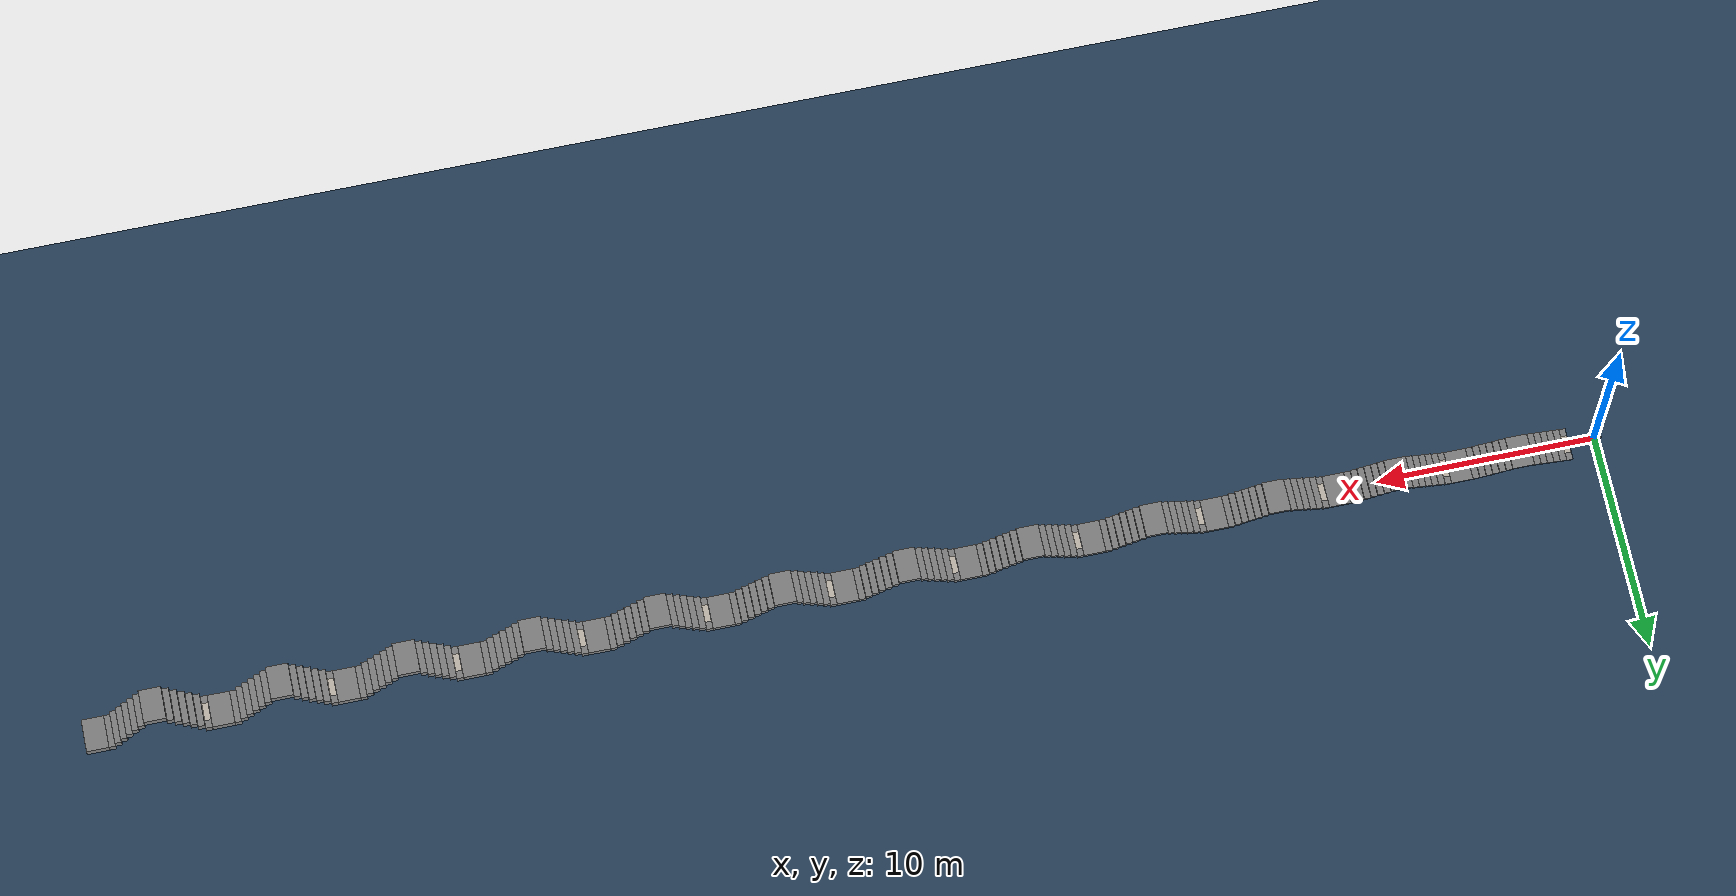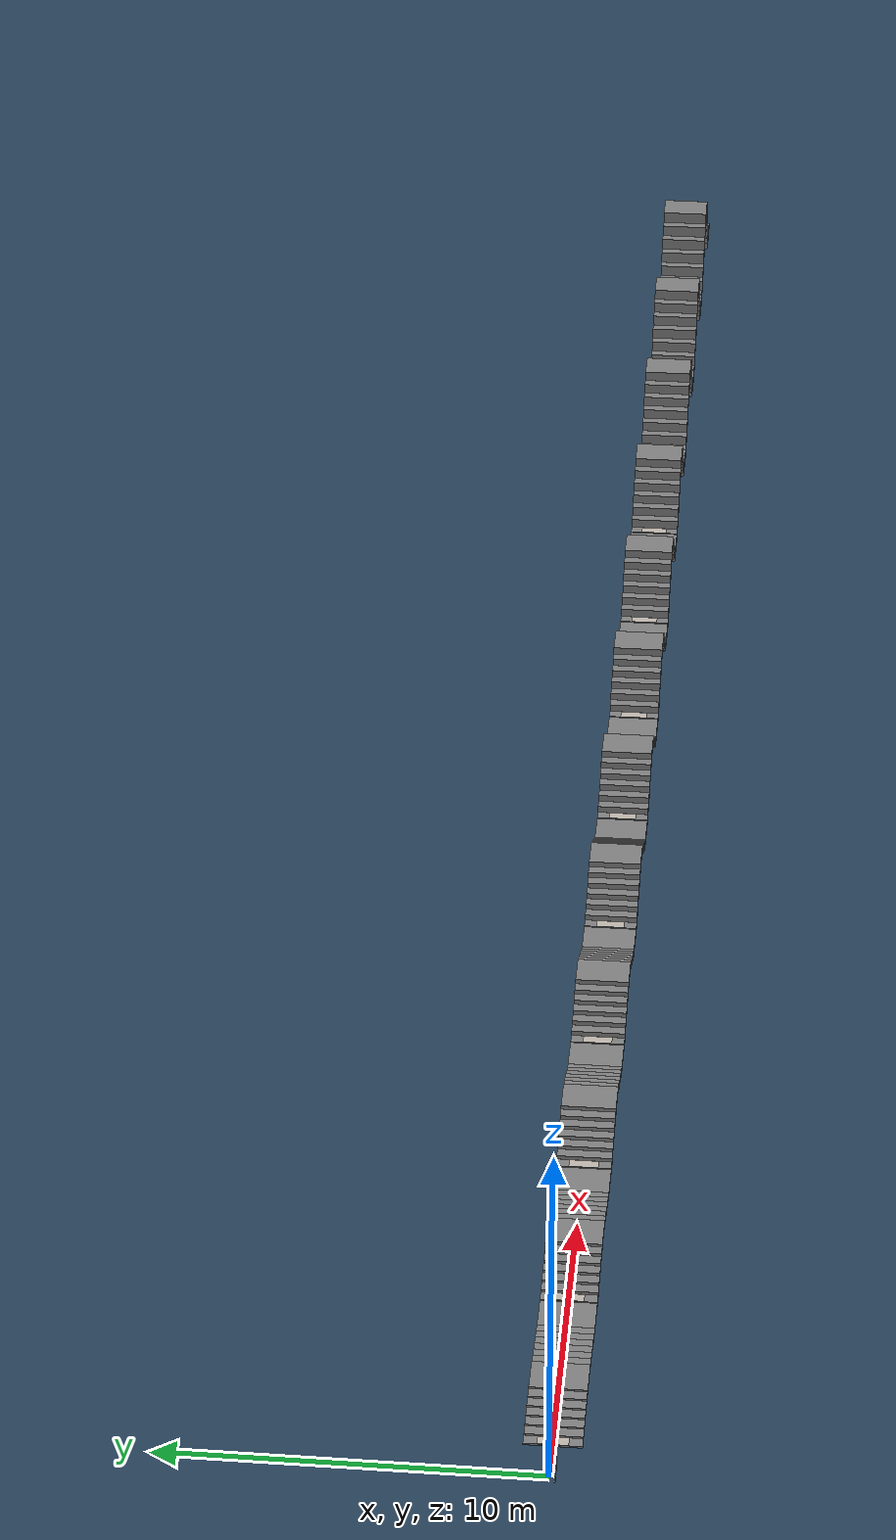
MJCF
<mujoco model="go2 scene">
  <include file="dog.xml" />
  <!--Stairs series: Up 6, Down 6, Start height 0.050, Step inc 0.030, Max height 0.400. -->
  <statistic center="0 0 0.1" extent="0.8" />
  <visual>
    <headlight diffuse="0.6 0.6 0.6" ambient="0.3 0.3 0.3" specular="0 0 0" />
    <rgba haze="0.15 0.25 0.35 1" />
    <global azimuth="-130" elevation="-20" />
  </visual>
  <asset>
    <texture type="skybox" builtin="gradient" rgb1="0.3 0.5 0.7" rgb2="0 0 0" width="512" height="3072" />
    <texture type="2d" name="groundplane" builtin="checker" mark="edge" rgb1="0.2 0.3 0.4" rgb2="0.1 0.2 0.3" markrgb="0.8 0.8 0.8" width="300" height="300" />
    <material name="groundplane" texture="groundplane" texuniform="true" texrepeat="5 5" reflectance="0.0" />
    <texture name="tex_height_5cm" type="2d" file="./imgs/height_5cm.png" />
    <material name="mat_height_5cm" texture="tex_height_5cm" specular="0" shininess="0" emission="1" texrepeat="1 1" rgba="1 1 1 1" />
    <texture name="tex_height_8cm" type="2d" file="./imgs/height_8cm.png" />
    <material name="mat_height_8cm" texture="tex_height_8cm" specular="0" shininess="0" emission="1" texrepeat="1 1" rgba="1 1 1 1" />
    <texture name="tex_height_11cm" type="2d" file="./imgs/height_11cm.png" />
    <material name="mat_height_11cm" texture="tex_height_11cm" specular="0" shininess="0" emission="1" texrepeat="1 1" rgba="1 1 1 1" />
    <texture name="tex_height_14cm" type="2d" file="./imgs/height_14cm.png" />
    <material name="mat_height_14cm" texture="tex_height_14cm" specular="0" shininess="0" emission="1" texrepeat="1 1" rgba="1 1 1 1" />
    <texture name="tex_height_17cm" type="2d" file="./imgs/height_17cm.png" />
    <material name="mat_height_17cm" texture="tex_height_17cm" specular="0" shininess="0" emission="1" texrepeat="1 1" rgba="1 1 1 1" />
    <texture name="tex_height_20cm" type="2d" file="./imgs/height_20cm.png" />
    <material name="mat_height_20cm" texture="tex_height_20cm" specular="0" shininess="0" emission="1" texrepeat="1 1" rgba="1 1 1 1" />
    <texture name="tex_height_23cm" type="2d" file="./imgs/height_23cm.png" />
    <material name="mat_height_23cm" texture="tex_height_23cm" specular="0" shininess="0" emission="1" texrepeat="1 1" rgba="1 1 1 1" />
    <texture name="tex_height_26cm" type="2d" file="./imgs/height_26cm.png" />
    <material name="mat_height_26cm" texture="tex_height_26cm" specular="0" shininess="0" emission="1" texrepeat="1 1" rgba="1 1 1 1" />
    <texture name="tex_height_29cm" type="2d" file="./imgs/height_29cm.png" />
    <material name="mat_height_29cm" texture="tex_height_29cm" specular="0" shininess="0" emission="1" texrepeat="1 1" rgba="1 1 1 1" />
    <texture name="tex_height_32cm" type="2d" file="./imgs/height_32cm.png" />
    <material name="mat_height_32cm" texture="tex_height_32cm" specular="0" shininess="0" emission="1" texrepeat="1 1" rgba="1 1 1 1" />
    <texture name="tex_height_35cm" type="2d" file="./imgs/height_35cm.png" />
    <material name="mat_height_35cm" texture="tex_height_35cm" specular="0" shininess="0" emission="1" texrepeat="1 1" rgba="1 1 1 1" />
    <texture name="tex_height_38cm" type="2d" file="./imgs/height_38cm.png" />
    <material name="mat_height_38cm" texture="tex_height_38cm" specular="0" shininess="0" emission="1" texrepeat="1 1" rgba="1 1 1 1" />
  </asset>
  <worldbody>
    <light pos="0 0 1.5" dir="0 0 -1" directional="true" />
    <geom name="floor" size="0 0 0.05" type="plane" material="groundplane" />
    <geom pos="1.3 0.0 0.025" type="box" size="0.15 0.75 0.025" quat="1.0 0.0 0.0 0.0" />
    <geom pos="1.3 0.0 0.052" type="box" size="0.4 0.14 0.0001" quat="0.7071067811865476 0.0 0.0 0.7071067811865475" contype="0" conaffinity="0" group="1" material="mat_height_5cm" />
    <geom pos="1.6 0.0 0.07500000000000001" type="box" size="0.15 0.75 0.025" quat="1.0 0.0 0.0 0.0" />
    <geom pos="1.9 0.0 0.125" type="box" size="0.15 0.75 0.025" quat="1.0 0.0 0.0 0.0" />
    <geom pos="2.2 0.0 0.17500000000000002" type="box" size="0.15 0.75 0.025" quat="1.0 0.0 0.0 0.0" />
    <geom pos="2.5 0.0 0.225" type="box" size="0.15 0.75 0.025" quat="1.0 0.0 0.0 0.0" />
    <geom pos="2.8 0.0 0.275" type="box" size="0.15 0.75 0.025" quat="1.0 0.0 0.0 0.0" />
    <geom pos="3.4499999999999997 0.0 0.32500000000000007" type="box" size="0.5 0.75 0.025" quat="1.0 0.0 0.0 0.0" />
    <geom pos="4.1 0.0 0.275" type="box" size="0.15 0.75 0.025" quat="1.0 0.0 0.0 0.0" />
    <geom pos="4.3999999999999995 0.0 0.22500000000000003" type="box" size="0.15 0.75 0.025" quat="1.0 0.0 0.0 0.0" />
    <geom pos="4.699999999999999 0.0 0.17500000000000002" type="box" size="0.15 0.75 0.025" quat="1.0 0.0 0.0 0.0" />
    <geom pos="5.0 0.0 0.125" type="box" size="0.15 0.75 0.025" quat="1.0 0.0 0.0 0.0" />
    <geom pos="5.3 0.0 0.07500000000000001" type="box" size="0.15 0.75 0.025" quat="1.0 0.0 0.0 0.0" />
    <geom pos="5.6 0.0 0.025000000000000022" type="box" size="0.15 0.75 0.025" quat="1.0 0.0 0.0 0.0" />
    <geom pos="6.25 0.0 0.025" type="box" size="0.5 0.75 0.025" quat="1.0 0.0 0.0 0.0" />
    <geom pos="6.898999999999999 0.0 0.04" type="box" size="0.15 0.75 0.04" quat="1.0 0.0 0.0 0.0" />
    <geom pos="6.898999999999999 0.0 0.082" type="box" size="0.4 0.14 0.0001" quat="0.7071067811865476 0.0 0.0 0.7071067811865475" contype="0" conaffinity="0" group="1" material="mat_height_8cm" />
    <geom pos="7.198999999999999 0.0 0.12" type="box" size="0.15 0.75 0.04" quat="1.0 0.0 0.0 0.0" />
    <geom pos="7.498999999999999 0.0 0.2" type="box" size="0.15 0.75 0.04" quat="1.0 0.0 0.0 0.0" />
    <geom pos="7.7989999999999995 0.0 0.28" type="box" size="0.15 0.75 0.04" quat="1.0 0.0 0.0 0.0" />
    <geom pos="8.099 0.0 0.36" type="box" size="0.15 0.75 0.04" quat="1.0 0.0 0.0 0.0" />
    <geom pos="8.399 0.0 0.44" type="box" size="0.15 0.75 0.04" quat="1.0 0.0 0.0 0.0" />
    <geom pos="9.049 0.0 0.52" type="box" size="0.5 0.75 0.04" quat="1.0 0.0 0.0 0.0" />
    <geom pos="9.698999999999998 0.0 0.44" type="box" size="0.15 0.75 0.04" quat="1.0 0.0 0.0 0.0" />
    <geom pos="9.998999999999999 0.0 0.36" type="box" size="0.15 0.75 0.04" quat="1.0 0.0 0.0 0.0" />
    <geom pos="10.299 0.0 0.28" type="box" size="0.15 0.75 0.04" quat="1.0 0.0 0.0 0.0" />
    <geom pos="10.598999999999998 0.0 0.2" type="box" size="0.15 0.75 0.04" quat="1.0 0.0 0.0 0.0" />
    <geom pos="10.899 0.0 0.12" type="box" size="0.15 0.75 0.04" quat="1.0 0.0 0.0 0.0" />
    <geom pos="11.198999999999998 0.0 0.03999999999999998" type="box" size="0.15 0.75 0.04" quat="1.0 0.0 0.0 0.0" />
    <geom pos="11.849 0.0 0.04" type="box" size="0.5 0.75 0.04" quat="1.0 0.0 0.0 0.0" />
    <geom pos="12.498 0.0 0.055" type="box" size="0.15 0.75 0.055" quat="1.0 0.0 0.0 0.0" />
    <geom pos="12.498 0.0 0.112" type="box" size="0.4 0.14 0.0001" quat="0.7071067811865476 0.0 0.0 0.7071067811865475" contype="0" conaffinity="0" group="1" material="mat_height_11cm" />
    <geom pos="12.797999999999998 0.0 0.165" type="box" size="0.15 0.75 0.055" quat="1.0 0.0 0.0 0.0" />
    <geom pos="13.097999999999999 0.0 0.275" type="box" size="0.15 0.75 0.055" quat="1.0 0.0 0.0 0.0" />
    <geom pos="13.397999999999998 0.0 0.385" type="box" size="0.15 0.75 0.055" quat="1.0 0.0 0.0 0.0" />
    <geom pos="13.697999999999999 0.0 0.495" type="box" size="0.15 0.75 0.055" quat="1.0 0.0 0.0 0.0" />
    <geom pos="13.997999999999998 0.0 0.605" type="box" size="0.15 0.75 0.055" quat="1.0 0.0 0.0 0.0" />
    <geom pos="14.647999999999998 0.0 0.7150000000000001" type="box" size="0.5 0.75 0.055" quat="1.0 0.0 0.0 0.0" />
    <geom pos="15.297999999999998 0.0 0.605" type="box" size="0.15 0.75 0.055" quat="1.0 0.0 0.0 0.0" />
    <geom pos="15.597999999999999 0.0 0.495" type="box" size="0.15 0.75 0.055" quat="1.0 0.0 0.0 0.0" />
    <geom pos="15.897999999999998 0.0 0.385" type="box" size="0.15 0.75 0.055" quat="1.0 0.0 0.0 0.0" />
    <geom pos="16.197999999999997 0.0 0.27499999999999997" type="box" size="0.15 0.75 0.055" quat="1.0 0.0 0.0 0.0" />
    <geom pos="16.497999999999998 0.0 0.16499999999999998" type="box" size="0.15 0.75 0.055" quat="1.0 0.0 0.0 0.0" />
    <geom pos="16.798 0.0 0.05499999999999994" type="box" size="0.15 0.75 0.055" quat="1.0 0.0 0.0 0.0" />
    <geom pos="17.448 0.0 0.055" type="box" size="0.5 0.75 0.055" quat="1.0 0.0 0.0 0.0" />
    <geom pos="18.096999999999998 0.0 0.07" type="box" size="0.15 0.75 0.07" quat="1.0 0.0 0.0 0.0" />
    <geom pos="18.096999999999998 0.0 0.142" type="box" size="0.4 0.14 0.0001" quat="0.7071067811865476 0.0 0.0 0.7071067811865475" contype="0" conaffinity="0" group="1" material="mat_height_14cm" />
    <geom pos="18.397 0.0 0.21000000000000002" type="box" size="0.15 0.75 0.07" quat="1.0 0.0 0.0 0.0" />
    <geom pos="18.696999999999996 0.0 0.35000000000000003" type="box" size="0.15 0.75 0.07" quat="1.0 0.0 0.0 0.0" />
    <geom pos="18.996999999999996 0.0 0.49000000000000005" type="box" size="0.15 0.75 0.07" quat="1.0 0.0 0.0 0.0" />
    <geom pos="19.296999999999997 0.0 0.6300000000000001" type="box" size="0.15 0.75 0.07" quat="1.0 0.0 0.0 0.0" />
    <geom pos="19.596999999999998 0.0 0.77" type="box" size="0.15 0.75 0.07" quat="1.0 0.0 0.0 0.0" />
    <geom pos="20.246999999999996 0.0 0.9100000000000001" type="box" size="0.5 0.75 0.07" quat="1.0 0.0 0.0 0.0" />
    <geom pos="20.897 0.0 0.77" type="box" size="0.15 0.75 0.07" quat="1.0 0.0 0.0 0.0" />
    <geom pos="21.196999999999996 0.0 0.63" type="box" size="0.15 0.75 0.07" quat="1.0 0.0 0.0 0.0" />
    <geom pos="21.496999999999996 0.0 0.49" type="box" size="0.15 0.75 0.07" quat="1.0 0.0 0.0 0.0" />
    <geom pos="21.796999999999997 0.0 0.35" type="box" size="0.15 0.75 0.07" quat="1.0 0.0 0.0 0.0" />
    <geom pos="22.096999999999998 0.0 0.20999999999999996" type="box" size="0.15 0.75 0.07" quat="1.0 0.0 0.0 0.0" />
    <geom pos="22.397 0.0 0.06999999999999995" type="box" size="0.15 0.75 0.07" quat="1.0 0.0 0.0 0.0" />
    <geom pos="23.046999999999997 0.0 0.07" type="box" size="0.5 0.75 0.07" quat="1.0 0.0 0.0 0.0" />
    <geom pos="23.695999999999998 0.0 0.085" type="box" size="0.15 0.75 0.085" quat="1.0 0.0 0.0 0.0" />
    <geom pos="23.695999999999998 0.0 0.172" type="box" size="0.4 0.14 0.0001" quat="0.7071067811865476 0.0 0.0 0.7071067811865475" contype="0" conaffinity="0" group="1" material="mat_height_17cm" />
    <geom pos="23.996 0.0 0.255" type="box" size="0.15 0.75 0.085" quat="1.0 0.0 0.0 0.0" />
    <geom pos="24.295999999999996 0.0 0.42500000000000004" type="box" size="0.15 0.75 0.085" quat="1.0 0.0 0.0 0.0" />
    <geom pos="24.595999999999997 0.0 0.5950000000000001" type="box" size="0.15 0.75 0.085" quat="1.0 0.0 0.0 0.0" />
    <geom pos="24.895999999999997 0.0 0.765" type="box" size="0.15 0.75 0.085" quat="1.0 0.0 0.0 0.0" />
    <geom pos="25.195999999999998 0.0 0.935" type="box" size="0.15 0.75 0.085" quat="1.0 0.0 0.0 0.0" />
    <geom pos="25.845999999999997 0.0 1.105" type="box" size="0.5 0.75 0.085" quat="1.0 0.0 0.0 0.0" />
    <geom pos="26.495999999999995 0.0 0.935" type="box" size="0.15 0.75 0.085" quat="1.0 0.0 0.0 0.0" />
    <geom pos="26.795999999999996 0.0 0.765" type="box" size="0.15 0.75 0.085" quat="1.0 0.0 0.0 0.0" />
    <geom pos="27.095999999999997 0.0 0.595" type="box" size="0.15 0.75 0.085" quat="1.0 0.0 0.0 0.0" />
    <geom pos="27.395999999999997 0.0 0.42500000000000004" type="box" size="0.15 0.75 0.085" quat="1.0 0.0 0.0 0.0" />
    <geom pos="27.695999999999998 0.0 0.255" type="box" size="0.15 0.75 0.085" quat="1.0 0.0 0.0 0.0" />
    <geom pos="27.995999999999995 0.0 0.08499999999999996" type="box" size="0.15 0.75 0.085" quat="1.0 0.0 0.0 0.0" />
    <geom pos="28.645999999999997 0.0 0.085" type="box" size="0.5 0.75 0.085" quat="1.0 0.0 0.0 0.0" />
    <geom pos="29.294999999999998 0.0 0.1" type="box" size="0.15 0.75 0.1" quat="1.0 0.0 0.0 0.0" />
    <geom pos="29.294999999999998 0.0 0.202" type="box" size="0.4 0.14 0.0001" quat="0.7071067811865476 0.0 0.0 0.7071067811865475" contype="0" conaffinity="0" group="1" material="mat_height_20cm" />
    <geom pos="29.595 0.0 0.30000000000000004" type="box" size="0.15 0.75 0.1" quat="1.0 0.0 0.0 0.0" />
    <geom pos="29.894999999999996 0.0 0.5" type="box" size="0.15 0.75 0.1" quat="1.0 0.0 0.0 0.0" />
    <geom pos="30.194999999999997 0.0 0.7000000000000001" type="box" size="0.15 0.75 0.1" quat="1.0 0.0 0.0 0.0" />
    <geom pos="30.494999999999997 0.0 0.9" type="box" size="0.15 0.75 0.1" quat="1.0 0.0 0.0 0.0" />
    <geom pos="30.794999999999998 0.0 1.1" type="box" size="0.15 0.75 0.1" quat="1.0 0.0 0.0 0.0" />
    <geom pos="31.444999999999997 0.0 1.3000000000000003" type="box" size="0.5 0.75 0.1" quat="1.0 0.0 0.0 0.0" />
    <geom pos="32.095 0.0 1.1" type="box" size="0.15 0.75 0.1" quat="1.0 0.0 0.0 0.0" />
    <geom pos="32.394999999999996 0.0 0.9000000000000001" type="box" size="0.15 0.75 0.1" quat="1.0 0.0 0.0 0.0" />
    <geom pos="32.695 0.0 0.7000000000000001" type="box" size="0.15 0.75 0.1" quat="1.0 0.0 0.0 0.0" />
    <geom pos="32.995 0.0 0.5" type="box" size="0.15 0.75 0.1" quat="1.0 0.0 0.0 0.0" />
    <geom pos="33.294999999999995 0.0 0.30000000000000004" type="box" size="0.15 0.75 0.1" quat="1.0 0.0 0.0 0.0" />
    <geom pos="33.595 0.0 0.10000000000000009" type="box" size="0.15 0.75 0.1" quat="1.0 0.0 0.0 0.0" />
    <geom pos="34.245 0.0 0.1" type="box" size="0.5 0.75 0.1" quat="1.0 0.0 0.0 0.0" />
    <geom pos="34.89399999999999 0.0 0.115" type="box" size="0.15 0.75 0.115" quat="1.0 0.0 0.0 0.0" />
    <geom pos="34.89399999999999 0.0 0.232" type="box" size="0.4 0.14 0.0001" quat="0.7071067811865476 0.0 0.0 0.7071067811865475" contype="0" conaffinity="0" group="1" material="mat_height_23cm" />
    <geom pos="35.193999999999996 0.0 0.34500000000000003" type="box" size="0.15 0.75 0.115" quat="1.0 0.0 0.0 0.0" />
    <geom pos="35.49399999999999 0.0 0.5750000000000001" type="box" size="0.15 0.75 0.115" quat="1.0 0.0 0.0 0.0" />
    <geom pos="35.794 0.0 0.805" type="box" size="0.15 0.75 0.115" quat="1.0 0.0 0.0 0.0" />
    <geom pos="36.093999999999994 0.0 1.0350000000000001" type="box" size="0.15 0.75 0.115" quat="1.0 0.0 0.0 0.0" />
    <geom pos="36.39399999999999 0.0 1.2650000000000001" type="box" size="0.15 0.75 0.115" quat="1.0 0.0 0.0 0.0" />
    <geom pos="37.044 0.0 1.495" type="box" size="0.5 0.75 0.115" quat="1.0 0.0 0.0 0.0" />
    <geom pos="37.693999999999996 0.0 1.2650000000000001" type="box" size="0.15 0.75 0.115" quat="1.0 0.0 0.0 0.0" />
    <geom pos="37.99399999999999 0.0 1.0350000000000001" type="box" size="0.15 0.75 0.115" quat="1.0 0.0 0.0 0.0" />
    <geom pos="38.294 0.0 0.8050000000000002" type="box" size="0.15 0.75 0.115" quat="1.0 0.0 0.0 0.0" />
    <geom pos="38.593999999999994 0.0 0.5750000000000001" type="box" size="0.15 0.75 0.115" quat="1.0 0.0 0.0 0.0" />
    <geom pos="38.89399999999999 0.0 0.3450000000000001" type="box" size="0.15 0.75 0.115" quat="1.0 0.0 0.0 0.0" />
    <geom pos="39.193999999999996 0.0 0.11499999999999999" type="box" size="0.15 0.75 0.115" quat="1.0 0.0 0.0 0.0" />
    <geom pos="39.843999999999994 0.0 0.115" type="box" size="0.5 0.75 0.115" quat="1.0 0.0 0.0 0.0" />
    <geom pos="40.49299999999999 0.0 0.13" type="box" size="0.15 0.75 0.13" quat="1.0 0.0 0.0 0.0" />
    <geom pos="40.49299999999999 0.0 0.262" type="box" size="0.4 0.14 0.0001" quat="0.7071067811865476 0.0 0.0 0.7071067811865475" contype="0" conaffinity="0" group="1" material="mat_height_26cm" />
    <geom pos="40.79299999999999 0.0 0.39" type="box" size="0.15 0.75 0.13" quat="1.0 0.0 0.0 0.0" />
    <geom pos="41.09299999999999 0.0 0.65" type="box" size="0.15 0.75 0.13" quat="1.0 0.0 0.0 0.0" />
    <geom pos="41.392999999999994 0.0 0.91" type="box" size="0.15 0.75 0.13" quat="1.0 0.0 0.0 0.0" />
    <geom pos="41.69299999999999 0.0 1.17" type="box" size="0.15 0.75 0.13" quat="1.0 0.0 0.0 0.0" />
    <geom pos="41.99299999999999 0.0 1.4300000000000002" type="box" size="0.15 0.75 0.13" quat="1.0 0.0 0.0 0.0" />
    <geom pos="42.642999999999994 0.0 1.69" type="box" size="0.5 0.75 0.13" quat="1.0 0.0 0.0 0.0" />
    <geom pos="43.29299999999999 0.0 1.4300000000000002" type="box" size="0.15 0.75 0.13" quat="1.0 0.0 0.0 0.0" />
    <geom pos="43.59299999999999 0.0 1.1700000000000002" type="box" size="0.15 0.75 0.13" quat="1.0 0.0 0.0 0.0" />
    <geom pos="43.892999999999994 0.0 0.9100000000000001" type="box" size="0.15 0.75 0.13" quat="1.0 0.0 0.0 0.0" />
    <geom pos="44.19299999999999 0.0 0.6500000000000001" type="box" size="0.15 0.75 0.13" quat="1.0 0.0 0.0 0.0" />
    <geom pos="44.49299999999999 0.0 0.3900000000000001" type="box" size="0.15 0.75 0.13" quat="1.0 0.0 0.0 0.0" />
    <geom pos="44.79299999999999 0.0 0.13000000000000012" type="box" size="0.15 0.75 0.13" quat="1.0 0.0 0.0 0.0" />
    <geom pos="45.44299999999999 0.0 0.13" type="box" size="0.5 0.75 0.13" quat="1.0 0.0 0.0 0.0" />
    <geom pos="46.091999999999985 0.0 0.145" type="box" size="0.15 0.75 0.145" quat="1.0 0.0 0.0 0.0" />
    <geom pos="46.091999999999985 0.0 0.292" type="box" size="0.4 0.14 0.0001" quat="0.7071067811865476 0.0 0.0 0.7071067811865475" contype="0" conaffinity="0" group="1" material="mat_height_29cm" />
    <geom pos="46.39199999999999 0.0 0.43499999999999994" type="box" size="0.15 0.75 0.145" quat="1.0 0.0 0.0 0.0" />
    <geom pos="46.691999999999986 0.0 0.725" type="box" size="0.15 0.75 0.145" quat="1.0 0.0 0.0 0.0" />
    <geom pos="46.99199999999999 0.0 1.015" type="box" size="0.15 0.75 0.145" quat="1.0 0.0 0.0 0.0" />
    <geom pos="47.29199999999999 0.0 1.305" type="box" size="0.15 0.75 0.145" quat="1.0 0.0 0.0 0.0" />
    <geom pos="47.591999999999985 0.0 1.595" type="box" size="0.15 0.75 0.145" quat="1.0 0.0 0.0 0.0" />
    <geom pos="48.24199999999999 0.0 1.8849999999999998" type="box" size="0.5 0.75 0.145" quat="1.0 0.0 0.0 0.0" />
    <geom pos="48.89199999999999 0.0 1.5949999999999998" type="box" size="0.15 0.75 0.145" quat="1.0 0.0 0.0 0.0" />
    <geom pos="49.191999999999986 0.0 1.3049999999999997" type="box" size="0.15 0.75 0.145" quat="1.0 0.0 0.0 0.0" />
    <geom pos="49.49199999999999 0.0 1.0149999999999997" type="box" size="0.15 0.75 0.145" quat="1.0 0.0 0.0 0.0" />
    <geom pos="49.79199999999999 0.0 0.7249999999999999" type="box" size="0.15 0.75 0.145" quat="1.0 0.0 0.0 0.0" />
    <geom pos="50.091999999999985 0.0 0.43499999999999983" type="box" size="0.15 0.75 0.145" quat="1.0 0.0 0.0 0.0" />
    <geom pos="50.39199999999999 0.0 0.1449999999999998" type="box" size="0.15 0.75 0.145" quat="1.0 0.0 0.0 0.0" />
    <geom pos="51.04199999999999 0.0 0.145" type="box" size="0.5 0.75 0.145" quat="1.0 0.0 0.0 0.0" />
    <geom pos="51.69099999999998 0.0 0.16" type="box" size="0.15 0.75 0.16" quat="1.0 0.0 0.0 0.0" />
    <geom pos="51.69099999999998 0.0 0.322" type="box" size="0.4 0.14 0.0001" quat="0.7071067811865476 0.0 0.0 0.7071067811865475" contype="0" conaffinity="0" group="1" material="mat_height_32cm" />
    <geom pos="51.990999999999985 0.0 0.48" type="box" size="0.15 0.75 0.16" quat="1.0 0.0 0.0 0.0" />
    <geom pos="52.29099999999998 0.0 0.8" type="box" size="0.15 0.75 0.16" quat="1.0 0.0 0.0 0.0" />
    <geom pos="52.59099999999999 0.0 1.12" type="box" size="0.15 0.75 0.16" quat="1.0 0.0 0.0 0.0" />
    <geom pos="52.890999999999984 0.0 1.44" type="box" size="0.15 0.75 0.16" quat="1.0 0.0 0.0 0.0" />
    <geom pos="53.19099999999998 0.0 1.76" type="box" size="0.15 0.75 0.16" quat="1.0 0.0 0.0 0.0" />
    <geom pos="53.84099999999999 0.0 2.08" type="box" size="0.5 0.75 0.16" quat="1.0 0.0 0.0 0.0" />
    <geom pos="54.490999999999985 0.0 1.76" type="box" size="0.15 0.75 0.16" quat="1.0 0.0 0.0 0.0" />
    <geom pos="54.79099999999998 0.0 1.44" type="box" size="0.15 0.75 0.16" quat="1.0 0.0 0.0 0.0" />
    <geom pos="55.09099999999999 0.0 1.12" type="box" size="0.15 0.75 0.16" quat="1.0 0.0 0.0 0.0" />
    <geom pos="55.390999999999984 0.0 0.8" type="box" size="0.15 0.75 0.16" quat="1.0 0.0 0.0 0.0" />
    <geom pos="55.69099999999998 0.0 0.48" type="box" size="0.15 0.75 0.16" quat="1.0 0.0 0.0 0.0" />
    <geom pos="55.990999999999985 0.0 0.15999999999999992" type="box" size="0.15 0.75 0.16" quat="1.0 0.0 0.0 0.0" />
    <geom pos="56.640999999999984 0.0 0.16" type="box" size="0.5 0.75 0.16" quat="1.0 0.0 0.0 0.0" />
    <geom pos="57.28999999999998 0.0 0.175" type="box" size="0.15 0.75 0.175" quat="1.0 0.0 0.0 0.0" />
    <geom pos="57.28999999999998 0.0 0.352" type="box" size="0.4 0.14 0.0001" quat="0.7071067811865476 0.0 0.0 0.7071067811865475" contype="0" conaffinity="0" group="1" material="mat_height_35cm" />
    <geom pos="57.58999999999998 0.0 0.5249999999999999" type="box" size="0.15 0.75 0.175" quat="1.0 0.0 0.0 0.0" />
    <geom pos="57.88999999999998 0.0 0.875" type="box" size="0.15 0.75 0.175" quat="1.0 0.0 0.0 0.0" />
    <geom pos="58.18999999999998 0.0 1.2249999999999999" type="box" size="0.15 0.75 0.175" quat="1.0 0.0 0.0 0.0" />
    <geom pos="58.48999999999998 0.0 1.575" type="box" size="0.15 0.75 0.175" quat="1.0 0.0 0.0 0.0" />
    <geom pos="58.78999999999998 0.0 1.9249999999999998" type="box" size="0.15 0.75 0.175" quat="1.0 0.0 0.0 0.0" />
    <geom pos="59.43999999999998 0.0 2.2749999999999995" type="box" size="0.5 0.75 0.175" quat="1.0 0.0 0.0 0.0" />
    <geom pos="60.08999999999998 0.0 1.9249999999999996" type="box" size="0.15 0.75 0.175" quat="1.0 0.0 0.0 0.0" />
    <geom pos="60.38999999999998 0.0 1.5749999999999997" type="box" size="0.15 0.75 0.175" quat="1.0 0.0 0.0 0.0" />
    <geom pos="60.68999999999998 0.0 1.2249999999999996" type="box" size="0.15 0.75 0.175" quat="1.0 0.0 0.0 0.0" />
    <geom pos="60.98999999999998 0.0 0.8749999999999998" type="box" size="0.15 0.75 0.175" quat="1.0 0.0 0.0 0.0" />
    <geom pos="61.28999999999998 0.0 0.5249999999999997" type="box" size="0.15 0.75 0.175" quat="1.0 0.0 0.0 0.0" />
    <geom pos="61.58999999999998 0.0 0.1749999999999996" type="box" size="0.15 0.75 0.175" quat="1.0 0.0 0.0 0.0" />
    <geom pos="62.23999999999998 0.0 0.175" type="box" size="0.5 0.75 0.175" quat="1.0 0.0 0.0 0.0" />
    <geom pos="62.888999999999974 0.0 0.19" type="box" size="0.15 0.75 0.19" quat="1.0 0.0 0.0 0.0" />
    <geom pos="62.888999999999974 0.0 0.382" type="box" size="0.4 0.14 0.0001" quat="0.7071067811865476 0.0 0.0 0.7071067811865475" contype="0" conaffinity="0" group="1" material="mat_height_38cm" />
    <geom pos="63.18899999999998 0.0 0.5700000000000001" type="box" size="0.15 0.75 0.19" quat="1.0 0.0 0.0 0.0" />
    <geom pos="63.488999999999976 0.0 0.95" type="box" size="0.15 0.75 0.19" quat="1.0 0.0 0.0 0.0" />
    <geom pos="63.78899999999998 0.0 1.33" type="box" size="0.15 0.75 0.19" quat="1.0 0.0 0.0 0.0" />
    <geom pos="64.08899999999997 0.0 1.71" type="box" size="0.15 0.75 0.19" quat="1.0 0.0 0.0 0.0" />
    <geom pos="64.38899999999998 0.0 2.09" type="box" size="0.15 0.75 0.19" quat="1.0 0.0 0.0 0.0" />
    <geom pos="65.03899999999997 0.0 2.47" type="box" size="0.5 0.75 0.19" quat="1.0 0.0 0.0 0.0" />
    <geom pos="65.68899999999998 0.0 2.0900000000000003" type="box" size="0.15 0.75 0.19" quat="1.0 0.0 0.0 0.0" />
    <geom pos="65.98899999999998 0.0 1.7100000000000004" type="box" size="0.15 0.75 0.19" quat="1.0 0.0 0.0 0.0" />
    <geom pos="66.28899999999997 0.0 1.3300000000000003" type="box" size="0.15 0.75 0.19" quat="1.0 0.0 0.0 0.0" />
    <geom pos="66.58899999999997 0.0 0.9500000000000002" type="box" size="0.15 0.75 0.19" quat="1.0 0.0 0.0 0.0" />
    <geom pos="66.88899999999998 0.0 0.5700000000000003" type="box" size="0.15 0.75 0.19" quat="1.0 0.0 0.0 0.0" />
    <geom pos="67.18899999999998 0.0 0.1900000000000004" type="box" size="0.15 0.75 0.19" quat="1.0 0.0 0.0 0.0" />
    <geom pos="67.83899999999997 0.0 0.19" type="box" size="0.5 0.75 0.19" quat="1.0 0.0 0.0 0.0" />
  </worldbody>
</mujoco>

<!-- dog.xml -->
<mujoco model="TOE_dog4.5">
  <compiler angle="radian" meshdir="../stl" autolimits="true" />

  <option cone="elliptic" impratio="100" />

  <default>
    <default class="dog">
      <geom friction="0.4" margin="0.001" condim="1"/>
      <joint axis="0 1 0" damping="0.1" armature="0.01" frictionloss="0.2"/>
      <motor ctrlrange="-20 20"/>
      <default class="abduction">
        <joint axis="1 0 0" range="-1 1"/>
      </default>
      <default class="hip">
        <joint range="-1.5 2.5"/>
      </default>
      <default class="knee">
        <joint range="-2.7 -0.8"/>
        <motor ctrlrange="-30 30"/>
      </default>
      <default class="visual">
        <geom type="mesh" contype="0" conaffinity="0" group="1"/>
      </default>
      <default class="collision">
        <geom group="3" contype="1" conaffinity="0"/>
        <default class="foot">
          <geom size="0.022" pos="-0.00129629 0 -0.21118" priority="1" condim="6" friction="0.9 0.02 0.01"/>
        </default>
      </default>
    </default>
  </default>

  <asset>
    <mesh name="base_link" file="base_link.STL"/>
    <mesh name="L_hip" file="L_hip.STL"/>
    <mesh name="L_thigh" file="L_thigh.STL"/>
    <mesh name="L_calf" file="L_calf.STL"/>
    <mesh name="foot" file="foot.STL"/>
    <mesh name="R_hip" file="R_hip.STL"/>
    <mesh name="R_thigh" file="R_thigh.STL"/>
    <mesh name="R_calf" file="R_calf.STL"/>
  </asset>

  <worldbody>
    <body name="base_link" pos="0 0 0.45" childclass="dog">
    <freejoint name="root"/>
    <inertial pos="0.00295211474088308 -0.00192758854859915 -0.0102792040045774" quat="-0.000543471 0.713435 -0.00173769 0.700719"
        mass="5.835083" diaginertia="0.068111 0.056604 0.025133" />
    <geom pos="-0.19 0.1154 -0.09" quat="0.707388 0 0 -0.706825" type="mesh" density="0" rgba="0.752941 0.752941 0.752941 1" mesh="base_link" contype="0" conaffinity="0" group="1"/>

    <geom size="0.135 0.115 0.06" type="box" rgba="1 1 1 1" class="collision"/>

    <site name='imu' size='0.01' pos='0.0 0 0.0'/>

    <body name="FL_hip" pos="0.2 0.05655 0">
      <inertial pos="-0.0070649 0.00658511 0.000124398" quat="0.495949 0.477547 0.517443 0.508169" mass="0.905192" diaginertia="0.00122102 0.00104387 0.000894103"/>
      <joint name="FL_hip_joint" pos="0 0 0" axis="1 0 0" range="-1 1" actuatorfrcrange="-20 20"/>
      <geom type="mesh" density="0" rgba="0.752941 0.752941 0.752941 1" mesh="L_hip" class="visual"/>
      <geom size="0.047 0.045" pos="0 0.05 0" quat="0.707107 0.707107 0 0" type="capsule" rgba="0.752941 0.752941 0.752941 1" class="collision"/>
      <body name="FL_thigh" pos="0 0.09375 0">
        <inertial pos="-0.00135206 -0.0159552 -0.030433" quat="0.699015 0.0668645 -0.0433449 0.710653" mass="1.1875" diaginertia="0.00485748 0.0046312 0.00105732"/>
        <joint name="FL_thigh_joint" pos="0 0 0" axis="0 1 0" range="-1.5 2.5" actuatorfrcrange="-20 20"/>
        <geom type="mesh" density="0" rgba="0.752941 0.752941 0.752941 1" mesh="L_thigh" class="visual"/>
        <geom size="0.055 0.01225 0.017" pos="0 0 -0.1065" quat="0.707107 0 0.707107 0" type="box" rgba="0.752941 0.752941 0.752941 1" class="collision"/>
        <body name="FL_calf" pos="0 0 -0.2">
          <inertial pos="0.006517 -0.000033 -0.106783" quat="1 0 0 0" mass="0.228394" diaginertia="0.00162529 0.00164186 0.00003857"/>
          <joint name="FL_calf_joint" pos="0 0 0" axis="0 1 0" range="-2.7 -0.8" actuatorfrcrange="-30 30"/>
          <geom type="mesh" density="0" rgba="0.752941 0.752941 0.752941 1" mesh="L_calf" class="visual"/>
          <geom size="0.012 0.06" pos="0.008 0 -0.05" quat="0.994493 0 -0.104807 0" type="capsule" rgba="0.752941 0.752941 0.752941 1" class="collision"/>
          <geom size="0.011 0.0325" pos="0.0198362 0 -0.138388" quat="0.999688 0 0.0249974 0" type="capsule" class="collision"/>
          <geom size="0.0155 0.015" pos="0.0134257 0 -0.182499" quat="0.965093 0 0.261909 0" type="capsule" class="collision"/>
          <geom pos="0.00070371 0 -0.21118" quat="1 0 0 0" type="mesh" density="0" rgba="1 1 1 1" mesh="foot" class="visual"/>
          <geom name="FL_foot" size="0.022" pos="-0.00129629 0 -0.21118" rgba="1 1 1 1" class="foot"/>
        </body>
      </body>
    </body>

    <body name="FR_hip" pos="0.2 -0.05655 0">
      <inertial pos="-0.0070649 -0.00658511 -0.000124398" quat="0.517443 0.508169 0.495949 0.477547" mass="0.905192" diaginertia="0.00122102 0.00104387 0.000894103"/>
      <joint name="FR_hip_joint" pos="0 0 0" axis="1 0 0" range="-1 1" actuatorfrcrange="-20 20"/>
      <geom quat="2.14617e-09 4.63268e-05 4.63268e-05 -1" type="mesh" density="0" rgba="0.752941 0.752941 0.752941 1" mesh="R_hip" class="visual"/>
      <geom size="0.047 0.045" pos="0 -0.05 0" quat="0.707107 0.707107 0 0" type="capsule" rgba="0.752941 0.752941 0.752941 1" class="collision"/>
      <body name="FR_thigh" pos="0 -0.09375 0">
        <inertial pos="-0.00109949 0.0159537 -0.0304843" quat="0.710653 -0.0433449 0.0668645 0.699015" mass="1.1875" diaginertia="0.00485748 0.0046312 0.00105732"/>
        <joint name="FR_thigh_joint" pos="0 0 0" axis="0 1 0" range="-1.5 2.5" actuatorfrcrange="-20 20"/>
        <geom type="mesh" density="0" rgba="0.752941 0.752941 0.752941 1" mesh="R_thigh" class="visual"/>
        <geom size="0.055 0.01225 0.017" pos="0 0 -0.1065" quat="0.707107 0 0.707107 0" type="box" rgba="0.752941 0.752941 0.752941 1" class="collision"/>
        <body name="FR_calf" pos="0 0 -0.2">
          <inertial pos="0.006517 -0.000033 -0.106783" quat="1 0 0 0" mass="0.228394" diaginertia="0.00162529 0.00164186 0.00003857"/>
          <joint name="FR_calf_joint" pos="0 0 0" axis="0 1 0" range="-2.7 -0.8" actuatorfrcrange="-30 30"/>
          <geom type="mesh" density="0" rgba="0.752941 0.752941 0.752941 1" mesh="R_calf" class="visual"/>
          <geom size="0.012 0.06" pos="0.008 0 -0.05" quat="0.994493 0 -0.104807 0" type="capsule" rgba="0.752941 0.752941 0.752941 1" class="collision"/>
          <geom size="0.011 0.0325" pos="0.020336 0 -0.1384" quat="0.999688 0 0.0249974 0" type="capsule" class="collision"/>
          <geom size="0.0155 0.015" pos="0.0161382 0 -0.182777" quat="0.971338 0 0.237703 0" type="capsule" class="collision"/>
          <geom pos="0.00070371 0 -0.21118" quat="1 0 0 0" type="mesh" density="0" rgba="1 1 1 1" mesh="foot" class="visual"/>
          <geom name="FR_foot" size="0.022" pos="-0.00129629 0 -0.21118" rgba="1 1 1 1" class="foot"/>
        </body>
      </body>
    </body>

    <body name="RL_hip" pos="-0.2 0.05655 0">
      <inertial pos="0.0070649 0.00658511 -0.000124398" quat="0.508169 0.517443 0.477547 0.495949" mass="0.905192" diaginertia="0.00122102 0.00104387 0.000894103"/>
      <joint name="RL_hip_joint" pos="0 0 0" axis="1 0 0" range="-1 1" actuatorfrcrange="-20 20"/>
      <geom quat="4.63268e-05 0 1 0" type="mesh" density="0" rgba="0.752941 0.752941 0.752941 1" mesh="L_hip" class="visual"/>
      <geom size="0.047 0.045" pos="0 0.05 0" quat="0.707107 0.707107 0 0" type="capsule" rgba="0.752941 0.752941 0.752941 1" class="collision"/>
      <body name="RL_thigh" pos="0 0.09375 0">
        <inertial pos="-0.00135206 -0.0159552 -0.030433" quat="0.699015 0.0668645 -0.0433449 0.710653" mass="1.1875" diaginertia="0.00485748 0.0046312 0.00105732"/>
        <joint name="RL_thigh_joint" pos="0 0 0" axis="0 1 0" range="-1.5 2.5" actuatorfrcrange="-20 20"/>
        <geom type="mesh" density="0" rgba="0.752941 0.752941 0.752941 1" mesh="L_thigh" class="visual"/>
        <geom size="0.055 0.01225 0.017" pos="0 0 -0.1065" quat="0.707107 0 0.707107 0" type="box" rgba="0.752941 0.752941 0.752941 1" class="collision"/>
        <body name="RL_calf" pos="0 0 -0.2">
          <inertial pos="0.006517 -0.000033 -0.106783" quat="1 0 0 0" mass="0.228394" diaginertia="0.00162529 0.00164186 0.00003857"/>
          <joint name="RL_calf_joint" pos="0 0 0" axis="0 1 0" range="-2.7 -0.8" actuatorfrcrange="-30 30"/>
          <geom type="mesh" density="0" rgba="0.752941 0.752941 0.752941 1" mesh="L_calf" class="visual"/>
          <geom size="0.012 0.06" pos="0.008 0 -0.05" quat="0.994493 0 -0.104807 0" type="capsule" rgba="0.752941 0.752941 0.752941 1" class="collision"/>
          <geom size="0.011 0.0325" pos="0.020336 0 -0.1384" quat="0.999688 0 0.0249974 0" type="capsule" class="collision"/>
          <geom size="0.0155 0.015" pos="0.0161382 0 -0.182777" quat="0.971338 0 0.237703 0" type="capsule" class="collision"/>
          <geom pos="0.00070371 0 -0.21118" quat="1 0 0 0" type="mesh" density="0" rgba="1 1 1 1" mesh="foot" class="visual"/>
          <geom name="RL_foot" size="0.022" pos="-0.00129629 0 -0.21118" rgba="1 1 1 1" class="foot"/>
        </body>
      </body>
    </body>

    <body name="RR_hip" pos="-0.2 -0.05655 0">
      <inertial pos="0.0070649 -0.00658511 0.000124398" quat="0.477547 0.495949 0.508169 0.517443" mass="0.905192" diaginertia="0.00122102 0.00104387 0.000894103"/>
      <joint name="RR_hip_joint" pos="0 0 0" axis="1 0 0" range="-1 1" actuatorfrcrange="-20 20"/>
      <geom quat="4.63268e-05 1 0 0" type="mesh" density="0" rgba="0.752941 0.752941 0.752941 1" mesh="R_hip" class="visual"/>
      <geom size="0.047 0.045" pos="0 -0.05 0" quat="0.707107 0.707107 0 0" type="capsule" rgba="0.752941 0.752941 0.752941 1" class="collision"/>
      <body name="RR_thigh" pos="0 -0.09375 0">
        <inertial pos="-0.00109949 0.0159537 -0.0304843" quat="0.710653 -0.0433449 0.0668645 0.699015" mass="1.1875" diaginertia="0.00485748 0.0046312 0.00105732"/>
        <joint name="RR_thigh_joint" pos="0 0 0" axis="0 1 0" range="-1.5 2.5" actuatorfrcrange="-20 20"/>
        <geom type="mesh" density="0" rgba="0.752941 0.752941 0.752941 1" mesh="R_thigh" class="visual"/>
        <geom size="0.055 0.01225 0.017" pos="0 0 -0.1065" quat="0.707107 0 0.707107 0" type="box" rgba="0.752941 0.752941 0.752941 1" class="collision"/>
        <body name="RR_calf" pos="0 0 -0.2">
          <inertial pos="0.006517 -0.000033 -0.106783" quat="1 0 0 0" mass="0.228394" diaginertia="0.00162529 0.00164186 0.00003857"/>
          <joint name="RR_calf_joint" pos="0 0 0" axis="0 1 0" range="-2.7 -0.8" actuatorfrcrange="-30 30"/>
          <geom type="mesh" density="0" rgba="0.752941 0.752941 0.752941 1" mesh="R_calf" class="visual"/>
          <geom size="0.012 0.06" pos="0.008 0 -0.05" quat="0.994493 0 -0.104807 0" type="capsule" rgba="0.752941 0.752941 0.752941 1" class="collision"/>
          <geom size="0.011 0.0325" pos="0.020336 0 -0.1384" quat="0.999688 0 0.0249974 0" type="capsule" class="collision"/>
          <geom size="0.0155 0.015" pos="0.0161382 0 -0.182777" quat="0.971338 0 0.237703 0" type="capsule" class="collision"/>
          <geom pos="0.00070371 0 -0.21118" quat="1 0 0 0" type="mesh" density="0" rgba="1 1 1 1" mesh="foot" class="visual"/>
          <geom name="RR_foot" size="0.022" pos="-0.00129629 0 -0.21118" rgba="1 1 1 1" class="foot"/>
        </body>
      </body>
    </body>

    </body>
  </worldbody>

  <actuator>
    <motor name="FL_hip_joint" joint="FL_hip_joint" gear="1" ctrllimited="true" ctrlrange="-20 20"/>
    <motor name="FL_thigh_joint" joint="FL_thigh_joint" gear="1" ctrllimited="true" ctrlrange="-20 20"/>
    <motor name="FL_calf_joint" joint="FL_calf_joint" gear="1" ctrllimited="true" ctrlrange="-30 30"/>

    <motor name="FR_hip_joint" joint="FR_hip_joint" gear="1" ctrllimited="true" ctrlrange="-20 20"/>
    <motor name="FR_thigh_joint" joint="FR_thigh_joint" gear="1" ctrllimited="true" ctrlrange="-20 20"/>
    <motor name="FR_calf_joint" joint="FR_calf_joint" gear="1" ctrllimited="true" ctrlrange="-30 30"/>

    <motor name="RL_hip_joint" joint="RL_hip_joint" gear="1" ctrllimited="true" ctrlrange="-20 20"/>
    <motor name="RL_thigh_joint" joint="RL_thigh_joint" gear="1" ctrllimited="true" ctrlrange="-20 20"/>
    <motor name="RL_calf_joint" joint="RL_calf_joint" gear="1" ctrllimited="true" ctrlrange="-30 30"/>

    <motor name="RR_hip_joint" joint="RR_hip_joint" gear="1" ctrllimited="true" ctrlrange="-20 20"/>
    <motor name="RR_thigh_joint" joint="RR_thigh_joint" gear="1" ctrllimited="true" ctrlrange="-20 20"/>
    <motor name="RR_calf_joint" joint="RR_calf_joint" gear="1" ctrllimited="true" ctrlrange="-30 30"/>
  </actuator>

  <sensor>
    <jointpos name="FL_hip_pos" joint="FL_hip_joint" />
    <jointpos name="FL_thigh_pos" joint="FL_thigh_joint" />
    <jointpos name="FL_calf_pos" joint="FL_calf_joint" />
    <jointpos name="FR_hip_pos" joint="FR_hip_joint" />
    <jointpos name="FR_thigh_pos" joint="FR_thigh_joint" />
    <jointpos name="FR_calf_pos" joint="FR_calf_joint" />
    <jointpos name="RL_hip_pos" joint="RL_hip_joint" />
    <jointpos name="RL_thigh_pos" joint="RL_thigh_joint" />
    <jointpos name="RL_calf_pos" joint="RL_calf_joint" />
    <jointpos name="RR_hip_pos" joint="RR_hip_joint" />
    <jointpos name="RR_thigh_pos" joint="RR_thigh_joint" />
    <jointpos name="RR_calf_pos" joint="RR_calf_joint" />

    <jointvel name="FL_hip_vel" joint="FL_hip_joint" />
    <jointvel name="FL_thigh_vel" joint="FL_thigh_joint" />
    <jointvel name="FL_calf_vel" joint="FL_calf_joint" />
    <jointvel name="FR_hip_vel" joint="FR_hip_joint" />
    <jointvel name="FR_thigh_vel" joint="FR_thigh_joint" />
    <jointvel name="FR_calf_vel" joint="FR_calf_joint" />
    <jointvel name="RL_hip_vel" joint="RL_hip_joint" />
    <jointvel name="RL_thigh_vel" joint="RL_thigh_joint" />
    <jointvel name="RL_calf_vel" joint="RL_calf_joint" />
    <jointvel name="RR_hip_vel" joint="RR_hip_joint" />
    <jointvel name="RR_thigh_vel" joint="RR_thigh_joint" />
    <jointvel name="RR_calf_vel" joint="RR_calf_joint" />

    <jointactuatorfrc name="FL_hip_torque" joint="FL_hip_joint" noise="0.01" />
    <jointactuatorfrc name="FL_thigh_torque" joint="FL_thigh_joint" noise="0.01" />
    <jointactuatorfrc name="FL_calf_torque" joint="FL_calf_joint" noise="0.01" />
    <jointactuatorfrc name="FR_hip_torque" joint="FR_hip_joint" noise="0.01" />
    <jointactuatorfrc name="FR_thigh_torque" joint="FR_thigh_joint" noise="0.01" />
    <jointactuatorfrc name="FR_calf_torque" joint="FR_calf_joint" noise="0.01" />
    <jointactuatorfrc name="RL_hip_torque" joint="RL_hip_joint" noise="0.01" />
    <jointactuatorfrc name="RL_thigh_torque" joint="RL_thigh_joint" noise="0.01" />
    <jointactuatorfrc name="RL_calf_torque" joint="RL_calf_joint" noise="0.01" />
    <jointactuatorfrc name="RR_hip_torque" joint="RR_hip_joint" noise="0.01" />
    <jointactuatorfrc name="RR_thigh_torque" joint="RR_thigh_joint" noise="0.01" />
    <jointactuatorfrc name="RR_calf_torque" joint="RR_calf_joint" noise="0.01" />

    <framequat     name='orientation' objtype='site' noise='0.001' objname='imu'/>
    <framepos      name='position' objtype='site' noise='0.001' objname='imu'/>
    <framelinvel  name="base_lin_vel" objtype="site" objname="imu" />
    <gyro          name='angular-velocity'    site='imu' noise='0.005' cutoff='34.9'/>
    <velocimeter   name='linear-velocity'     site='imu' noise='0.001' cutoff='30'/>
    <accelerometer name='linear-acceleration' site='imu' noise='0.005' cutoff='157'/>
    <magnetometer  name='magnetometer'        site='imu'/>
  </sensor>

  <keyframe>
    <key name="home" qpos="0 0 0.27 1 0 0 0 0 0.9 -1.8 0 0.9 -1.8 0 0.9 -1.8 0 0.9 -1.8"
      ctrl="0 0.9 -1.8 0 0.9 -1.8 0 0.9 -1.8 0 0.9 -1.8" />
  </keyframe>
</mujoco>
